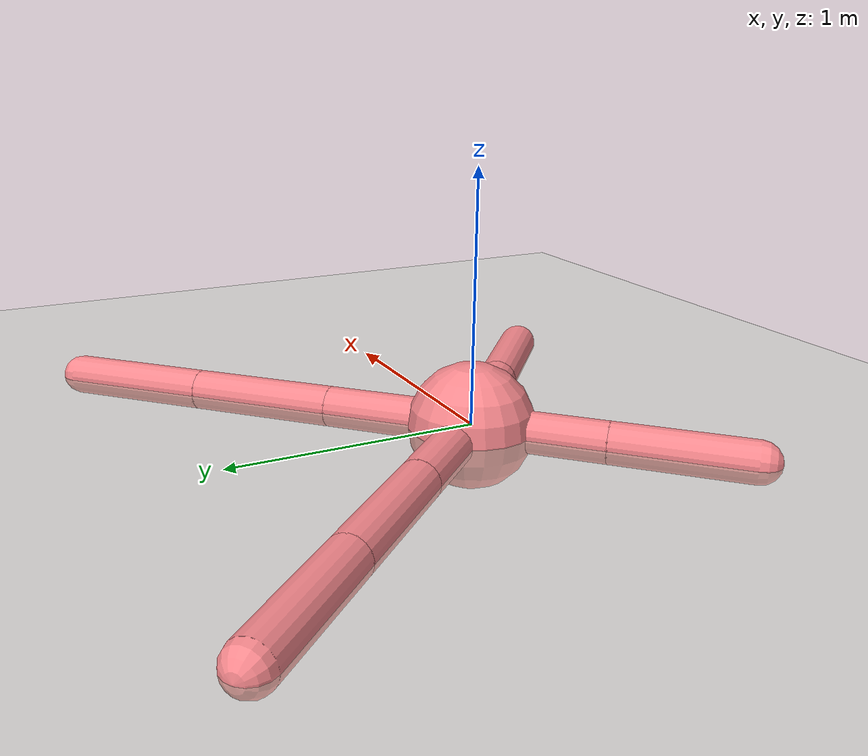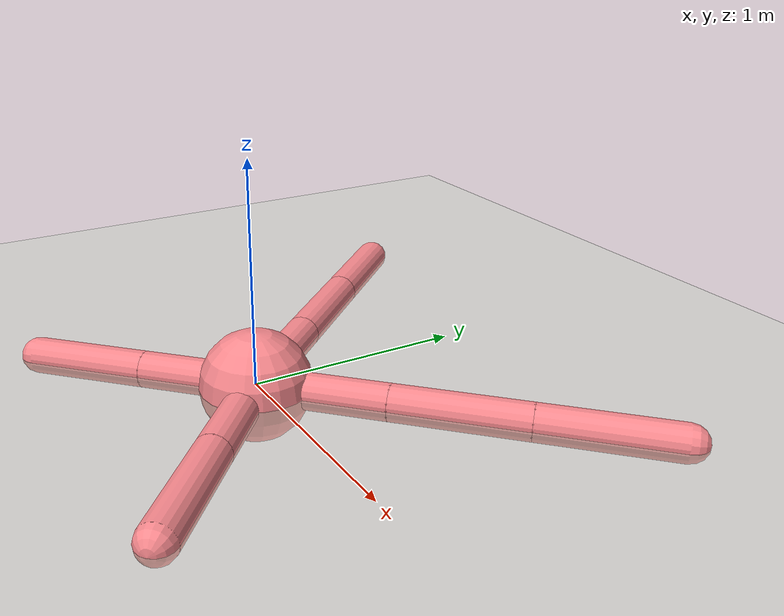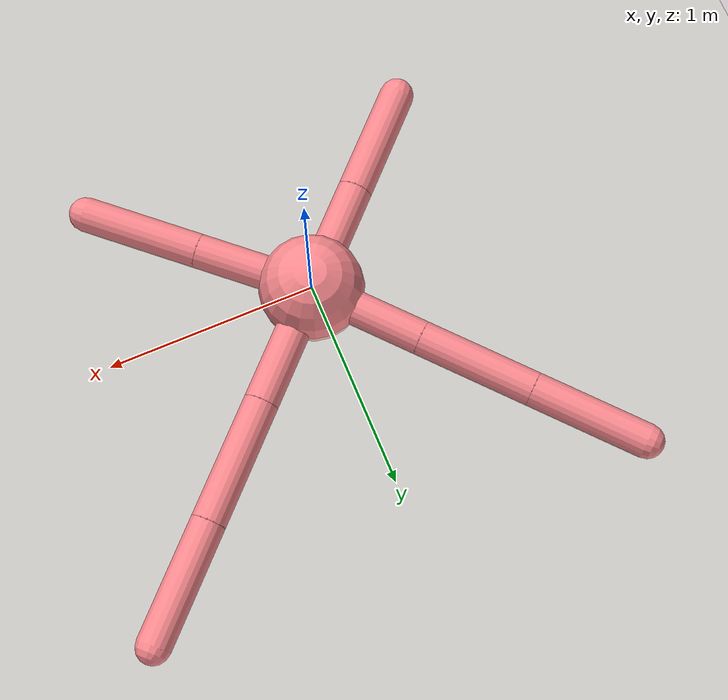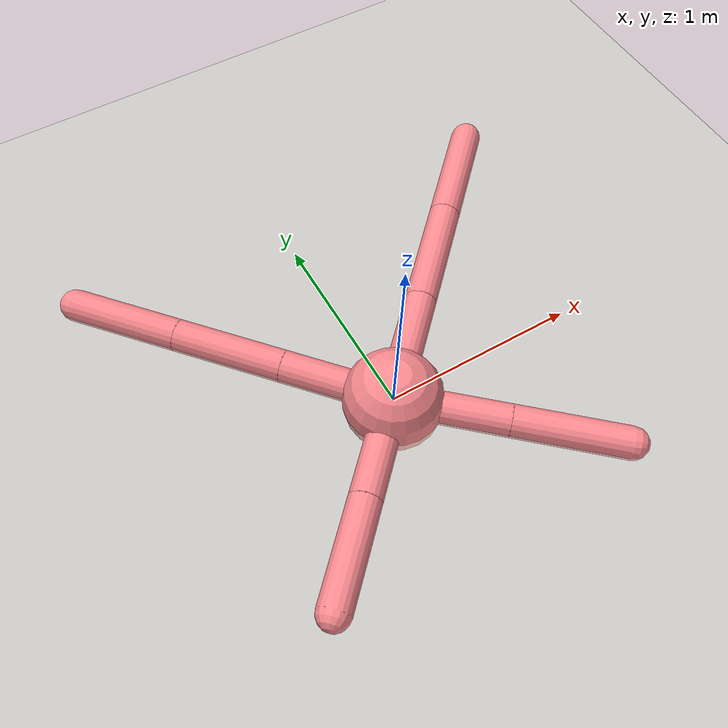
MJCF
<mujoco model="ant">
  <compiler inertiafromgeom="true" angle="degree"/>
  <option timestep="0.016" iterations="50" tolerance="1e-10" solver="Newton" jacobian="dense" cone="pyramidal"/>
  <default>
    <joint armature="1" damping="0.1" limited="true"/>
    <geom condim="3" density="5.0" friction="1.5 0.1 0.1" margin="0.01" rgba=".98 .54 .56 1."/>
  </default>
  <visual>
    <headlight ambient=".1 .1 .1" diffuse=".6 .6 .6" specular="0.3 0.3 0.3"/>
    <map znear=".01"/>
    <quality shadowsize="16384"/>
  </visual>
  <worldbody>
    <light cutoff="100" diffuse="1 1 1" dir="-0 0 -1.3" directional="true" exponent="1" pos="0 0 1.3" specular=".1 .1 .1"/>
    <geom condim="3" name="floor" pos="0 0 0" rgba="0.8 0.9 0.8 1" size="200 200 .125" type="plane" material="grid_new"/>
    <body name="0" pos="0 0 0">
      <camera name="track" mode="trackcom" pos="0 -3 0.3" xyaxes="1 0 0 0 0 1"/>
      <geom pos="0 0 0" size="0.25" type="sphere"/>
      <freejoint name="root"/>
      <body name="1" pos="0 0 0">
        <joint axis="-0.707107 0.707107 0" name="1_joint" pos="0 0 0" range="-30 30" type="hinge"/>
        <geom fromto="-0.000218 -0.000218 0 0.422305 0.422305 0" size="0.082435" type="capsule"/>
        <body name="11" pos="0.422305 0.422305 0">
          <joint axis="-0.707107 0.707107 0" name="11_joint" pos="0 0 0" range="-30 30" type="hinge"/>
          <geom fromto="-0.000218 -0.000218 0 0.422305 0.422305 0" size="0.082435" type="capsule"/>
          <body name="111" pos="0.422305 0.422305 0">
            <joint axis="-0.707107 0.707107 0" name="111_joint" pos="0 0 0" range="-30 30" type="hinge"/>
            <geom fromto="-0.000218 -0.000218 0 0.422305 0.422305 0" size="0.082435" type="capsule"/>
          </body>
        </body>
        <body name="21" pos="0.422305 0.422305 0">
          <joint axis="-0.707107 0.707107 0" name="21_joint" pos="0 0 0" range="-30 30" type="hinge"/>
          <geom fromto="-0.000218 -0.000218 0 0.422305 0.422305 0" size="0.082435" type="capsule"/>
        </body>
      </body>
      <body name="2" pos="0 0 0">
        <joint axis="-0.707107 -0.707107 0" name="2_joint" pos="0 0 0" range="-30 30" type="hinge"/>
        <geom fromto="0.000205 -0.00023 0 -0.375229 0.422305 0" size="0.082435" type="capsule"/>
        <body name="12" pos="-0.375229 0.422305 0">
          <joint axis="-0.707107 -0.707107 0" name="12_joint" pos="0 0 0" range="-30 30" type="hinge"/>
          <geom fromto="0.000205 -0.00023 0 -0.375229 0.422305 0" size="0.082435" type="capsule"/>
          <body name="112" pos="-0.375229 0.422305 0">
            <joint axis="-0.707107 -0.707107 0" name="112_joint" pos="0 0 0" range="-30 30" type="hinge"/>
            <geom fromto="0.000205 -0.00023 0 -0.375229 0.422305 0" size="0.082435" type="capsule"/>
          </body>
        </body>
        <body name="22" pos="-0.375229 0.422305 0">
          <joint axis="-0.707107 -0.707107 0" name="22_joint" pos="0 0 0" range="-30 30" type="hinge"/>
          <geom fromto="0.000205 -0.00023 0 -0.375229 0.422305 0" size="0.082435" type="capsule"/>
        </body>
      </body>
      <body name="3" pos="0 0 0">
        <joint axis="0.707107 -0.707107 0" name="3_joint" pos="0 0 0" range="-30 30" type="hinge"/>
        <geom fromto="0.000218 0.000218 0 -0.375229 -0.375229 0" size="0.082435" type="capsule"/>
        <body name="13" pos="-0.375229 -0.375229 0">
          <joint axis="0.707107 -0.707107 0" name="13_joint" pos="0 0 0" range="-30 30" type="hinge"/>
          <geom fromto="0.000218 0.000218 0 -0.375229 -0.375229 0" size="0.082435" type="capsule"/>
        </body>
      </body>
      <body name="4" pos="0 0 0">
        <joint axis="0.707107 0.707107 0" name="4_joint" pos="0 0 0" range="-30 30" type="hinge"/>
        <geom fromto="-0.00023 0.000205 0 0.422305 -0.375229 0" size="0.082435" type="capsule"/>
        <body name="14" pos="0.422305 -0.375229 0">
          <joint axis="0.707107 0.707107 0" name="14_joint" pos="0 0 0" range="-30 30" type="hinge"/>
          <geom fromto="-0.00023 0.000205 0 0.422305 -0.375229 0" size="0.082435" type="capsule"/>
        </body>
      </body>
    </body>
  </worldbody>
  <actuator>
    <motor ctrllimited="true" ctrlrange="-1.0 1.0" joint="1_joint" gear="164.329375" name="1_joint"/>
    <motor ctrllimited="true" ctrlrange="-1.0 1.0" joint="2_joint" gear="164.329375" name="2_joint"/>
    <motor ctrllimited="true" ctrlrange="-1.0 1.0" joint="3_joint" gear="164.329375" name="3_joint"/>
    <motor ctrllimited="true" ctrlrange="-1.0 1.0" joint="4_joint" gear="164.329375" name="4_joint"/>
    <motor ctrllimited="true" ctrlrange="-1.0 1.0" joint="11_joint" gear="164.329375" name="11_joint"/>
    <motor ctrllimited="true" ctrlrange="-1.0 1.0" joint="12_joint" gear="164.329375" name="12_joint"/>
    <motor ctrllimited="true" ctrlrange="-1.0 1.0" joint="13_joint" gear="164.329375" name="13_joint"/>
    <motor ctrllimited="true" ctrlrange="-1.0 1.0" joint="14_joint" gear="164.329375" name="14_joint"/>
    <motor ctrllimited="true" ctrlrange="-1.0 1.0" joint="21_joint" gear="164.329375" name="21_joint"/>
    <motor ctrllimited="true" ctrlrange="-1.0 1.0" joint="111_joint" gear="164.329375" name="111_joint"/>
    <motor ctrllimited="true" ctrlrange="-1.0 1.0" joint="22_joint" gear="164.329375" name="22_joint"/>
    <motor ctrllimited="true" ctrlrange="-1.0 1.0" joint="112_joint" gear="164.329375" name="112_joint"/>
  </actuator>
  <asset>
    <texture type="skybox" builtin="gradient" rgb1=".4 .5 .6" rgb2="0 0 0" width="100" height="100"/>
    <texture builtin="flat" height="1278" mark="cross" markrgb="1 1 1" name="texgeom" random="0.01" rgb1="0.8 0.6 0.4" rgb2="0.8 0.6 0.4" type="cube" width="127"/>
    <texture builtin="checker" height="100" name="texplane" rgb1="0 0 0" rgb2="0.8 0.8 0.8" type="2d" width="100"/>
    <material name="MatPlane" reflectance="0.5" shininess="1" specular="1" texrepeat="60 60" texture="texplane"/>
    <material name="geom" texture="texgeom" texuniform="true"/>
    <texture name="grid_new" type="2d" builtin="checker" rgb1=".1 .3 .2" rgb2=".2 .4 .3" width="1000" height="1000" mark="none" markrgb=".8 .6 .4"/>
    <material name="grid_new" texture="grid_new" texrepeat="0.2 0.2" texuniform="true" reflectance=".2"/>
  </asset>
</mujoco>
